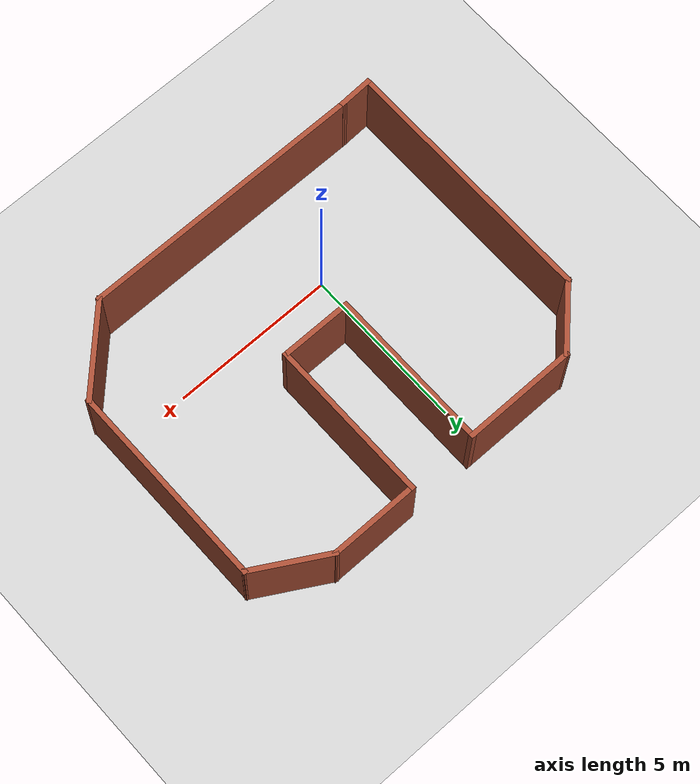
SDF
<sdf version="1.7">
 <world name="default">
  <light name="sun" type="directional">
   <pose>0 0 10 0 -0 0</pose>
   <diffuse>0.8 0.8 0.8 1</diffuse>
   <specular>0.2 0.2 0.2 1</specular>
   <attenuation>
    <range>1000</range>
    <constant>0.9</constant>
    <linear>0.01</linear>
    <quadratic>0.001</quadratic>
   </attenuation>
   <direction>-0.5 0.1 -0.9</direction>
   <spot><inner_angle>0</inner_angle><outer_angle>0</outer_angle><falloff>0</falloff></spot>
  </light>
  <model name="ground_plane">
   <static>1</static>
   <link name="link">
    <collision name="collision">
     <geometry><plane><normal>0 0 1</normal><size>100 100</size></plane></geometry>
     <surface><friction><ode><mu>100</mu><mu2>50</mu2></ode></friction></surface>
    </collision>
    <visual name="visual">
     <cast_shadows>0</cast_shadows>
     <geometry><plane><normal>0 0 1</normal><size>100 100</size></plane></geometry>
     <material>
      <script><uri>file://media/materials/scripts/gazebo.material</uri><name>Gazebo/Grey</name></script>
     </material>
    </visual>
   </link>
  </model>
  <gravity>0 0 -9.8</gravity>
  <magnetic_field>6e-06 2.3e-05 -4.2e-05</magnetic_field>
  <atmosphere type="adiabatic"/>
  <physics type="ode">
   <max_step_size>0.001</max_step_size>
   <real_time_factor>1</real_time_factor>
   <real_time_update_rate>1000</real_time_update_rate>
  </physics>
  <scene><ambient>0.4 0.4 0.4 1</ambient><background>0.7 0.7 0.7 1</background><shadows>1</shadows></scene>
  <audio><device>default</device></audio>
  <spherical_coordinates>
   <surface_model>EARTH_WGS84</surface_model>
   <latitude_deg>0</latitude_deg>
   <longitude_deg>0</longitude_deg>
   <elevation>0</elevation>
   <heading_deg>0</heading_deg>
  </spherical_coordinates>
  <model name="indoor_sim">
   <pose>1.53103 1.80794 0 0 -0 0</pose>
   <link name="Wall_10">
    <collision name="Wall_10_Collision">
     <geometry><box><size>3.5 0.15 2.5</size></box></geometry>
     <pose>0 0 1.25 0 -0 0</pose>
    </collision>
    <visual name="Wall_10_Visual">
     <pose>0 0 1.25 0 -0 0</pose>
     <geometry><box><size>3.5 0.15 2.5</size></box></geometry>
     <material>
      <script><uri>file://media/materials/scripts/gazebo.material</uri><name>Gazebo/Bricks</name></script>
      <ambient>1 1 1 1</ambient>
     </material>
     <meta><layer>0</layer></meta>
    </visual>
    <pose>-2.62512 4.65364 0 0 -0 3.14159</pose>
   </link>
   <link name="Wall_11">
    <collision name="Wall_11_Collision">
     <geometry><box><size>2.25 0.15 2.5</size></box></geometry>
     <pose>0 0 1.25 0 -0 0</pose>
    </collision>
    <visual name="Wall_11_Visual">
     <pose>0 0 1.25 0 -0 0</pose>
     <geometry><box><size>2.25 0.15 2.5</size></box></geometry>
     <material>
      <script><uri>file://media/materials/scripts/gazebo.material</uri><name>Gazebo/Bricks</name></script>
      <ambient>1 1 1 1</ambient>
     </material>
     <meta><layer>0</layer></meta>
    </visual>
    <pose>-5.04258 3.91118 0 0 -0 -2.35619</pose>
   </link>
   <link name="Wall_12">
    <collision name="Wall_12_Collision">
     <geometry><box><size>8 0.15 2.5</size></box></geometry>
     <pose>0 0 1.25 0 -0 0</pose>
    </collision>
    <visual name="Wall_12_Visual">
     <pose>0 0 1.25 0 -0 0</pose>
     <geometry><box><size>8 0.15 2.5</size></box></geometry>
     <material>
      <script><uri>file://media/materials/scripts/gazebo.material</uri><name>Gazebo/Bricks</name></script>
      <ambient>1 1 1 1</ambient>
     </material>
     <meta><layer>0</layer></meta>
    </visual>
    <pose>-5.78504 -0.756284 0 0 -0 -1.5708</pose>
   </link>
   <link name="Wall_13">
    <collision name="Wall_13_Collision">
     <geometry><box><size>1.10587 0.15 2.5</size></box></geometry>
     <pose>0 0 1.25 0 -0 0</pose>
    </collision>
    <visual name="Wall_13_Visual">
     <pose>0 0 1.25 0 -0 0</pose>
     <geometry><box><size>1.10587 0.15 2.5</size></box></geometry>
     <material>
      <script><uri>file://media/materials/scripts/gazebo.material</uri><name>Gazebo/Bricks</name></script>
      <ambient>1 1 1 1</ambient>
     </material>
     <meta><layer>0</layer></meta>
    </visual>
    <pose>-5.30763 -4.65895 0 0 -0 0.046749</pose>
   </link>
   <link name="Wall_2">
    <collision name="Wall_2_Collision">
     <geometry><box><size>8.75 0.15 2.5</size></box></geometry>
     <pose>0 0 1.25 0 -0 0</pose>
    </collision>
    <visual name="Wall_2_Visual">
     <pose>0 0 1.25 0 -0 0</pose>
     <geometry><box><size>8.75 0.15 2.5</size></box></geometry>
     <material>
      <script><uri>file://media/materials/scripts/gazebo.material</uri><name>Gazebo/Bricks</name></script>
      <ambient>1 1 1 1</ambient>
     </material>
     <meta><layer>0</layer></meta>
    </visual>
    <pose>-0.530212 -4.63661 0 0 -0 0</pose>
   </link>
   <link name="Wall_3">
    <collision name="Wall_3_Collision">
     <geometry><box><size>3 0.15 2.5</size></box></geometry>
     <pose>0 0 1.25 0 -0 0</pose>
    </collision>
    <visual name="Wall_3_Visual">
     <pose>0 0 1.25 0 -0 0</pose>
     <geometry><box><size>3 0.15 2.5</size></box></geometry>
     <material>
      <script><uri>file://media/materials/scripts/gazebo.material</uri><name>Gazebo/Bricks</name></script>
      <ambient>1 1 1 1</ambient>
     </material>
     <meta><layer>0</layer></meta>
    </visual>
    <pose>4.77742 -3.62899 0 0 -0 0.785398</pose>
   </link>
   <link name="Wall_4">
    <collision name="Wall_4_Collision">
     <geometry><box><size>6.25 0.15 2.5</size></box></geometry>
     <pose>0 0 1.25 0 -0 0</pose>
    </collision>
    <visual name="Wall_4_Visual">
     <pose>0 0 1.25 0 -0 0</pose>
     <geometry><box><size>6.25 0.15 2.5</size></box></geometry>
     <material>
      <script><uri>file://media/materials/scripts/gazebo.material</uri><name>Gazebo/Bricks</name></script>
      <ambient>1 1 1 1</ambient>
     </material>
     <meta><layer>0</layer></meta>
    </visual>
    <pose>5.78504 0.42864 0 0 -0 1.5708</pose>
   </link>
   <link name="Wall_5">
    <collision name="Wall_5_Collision">
     <geometry><box><size>2.5 0.15 2.5</size></box></geometry>
     <pose>0 0 1.25 0 -0 0</pose>
    </collision>
    <visual name="Wall_5_Visual">
     <pose>0 0 1.25 0 -0 0</pose>
     <geometry><box><size>2.5 0.15 2.5</size></box></geometry>
     <material>
      <script><uri>file://media/materials/scripts/gazebo.material</uri><name>Gazebo/Bricks</name></script>
      <ambient>1 1 1 1</ambient>
     </material>
     <meta><layer>0</layer></meta>
    </visual>
    <pose>4.76746 4.06614 0 0 -0 2.61799</pose>
   </link>
   <link name="Wall_6">
    <collision name="Wall_6_Collision">
     <geometry><box><size>2.75 0.15 2.5</size></box></geometry>
     <pose>0 0 1.25 0 -0 0</pose>
    </collision>
    <visual name="Wall_6_Visual">
     <pose>0 0 1.25 0 -0 0</pose>
     <geometry><box><size>2.75 0.15 2.5</size></box></geometry>
     <material>
      <script><uri>file://media/materials/scripts/gazebo.material</uri><name>Gazebo/Bricks</name></script>
      <ambient>1 1 1 1</ambient>
     </material>
     <meta><layer>0</layer></meta>
    </visual>
    <pose>2.44988 4.65364 0 0 -0 3.14159</pose>
   </link>
   <link name="Wall_7">
    <collision name="Wall_7_Collision">
     <geometry><box><size>5 0.15 2.5</size></box></geometry>
     <pose>0 0 1.25 0 -0 0</pose>
    </collision>
    <visual name="Wall_7_Visual">
     <pose>0 0 1.25 0 -0 0</pose>
     <geometry><box><size>5 0.15 2.5</size></box></geometry>
     <material>
      <script><uri>file://media/materials/scripts/gazebo.material</uri><name>Gazebo/Bricks</name></script>
      <ambient>1 1 1 1</ambient>
     </material>
     <meta><layer>0</layer></meta>
    </visual>
    <pose>1.14988 2.22864 0 0 -0 -1.5708</pose>
   </link>
   <link name="Wall_8">
    <collision name="Wall_8_Collision">
     <geometry><box><size>2.25 0.15 2.5</size></box></geometry>
     <pose>0 0 1.25 0 -0 0</pose>
    </collision>
    <visual name="Wall_8_Visual">
     <pose>0 0 1.25 0 -0 0</pose>
     <geometry><box><size>2.25 0.15 2.5</size></box></geometry>
     <material>
      <script><uri>file://media/materials/scripts/gazebo.material</uri><name>Gazebo/Bricks</name></script>
      <ambient>1 1 1 1</ambient>
     </material>
     <meta><layer>0</layer></meta>
    </visual>
    <pose>0.099882 -0.19636 0 0 -0 3.14159</pose>
   </link>
   <link name="Wall_9">
    <collision name="Wall_9_Collision">
     <geometry><box><size>5 0.15 2.5</size></box></geometry>
     <pose>0 0 1.25 0 -0 0</pose>
    </collision>
    <visual name="Wall_9_Visual">
     <pose>0 0 1.25 0 -0 0</pose>
     <geometry><box><size>5 0.15 2.5</size></box></geometry>
     <material>
      <script><uri>file://media/materials/scripts/gazebo.material</uri><name>Gazebo/Bricks</name></script>
      <ambient>1 1 1 1</ambient>
     </material>
     <meta><layer>0</layer></meta>
    </visual>
    <pose>-0.950118 2.22864 0 0 -0 1.5708</pose>
   </link>
   <static>1</static>
  </model>
 </world>
</sdf>
